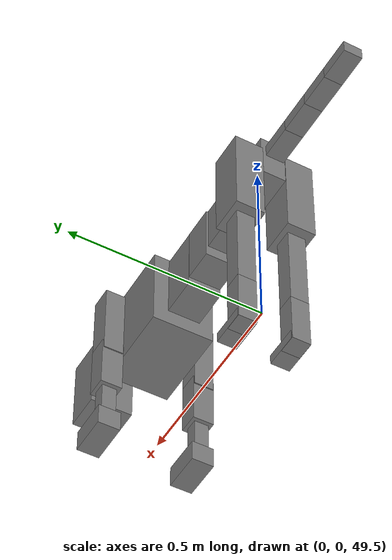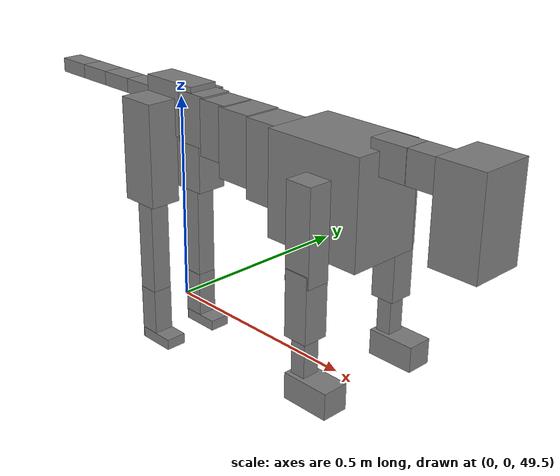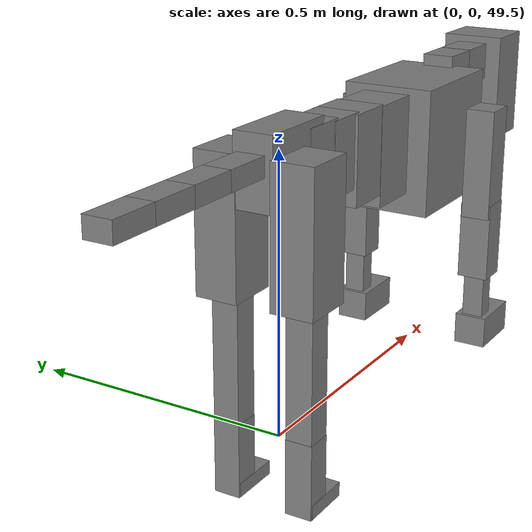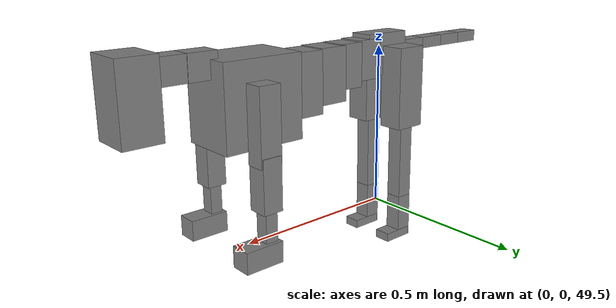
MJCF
<mujoco model="dog">

    <default>
        <joint armature="0.02" stiffness="1" damping="0.2" limited="true"/>
        <geom condim="3" friction="1 0.05 0.05" margin="0.01"/>
        <motor ctrllimited="true" ctrlrange="-1.0 1.0" forcelimited="true" gear="50"/>
    </default>

    <compiler inertiafromgeom="true" angle="radian"/>

    <option timestep="0.016" iterations="50" tolerance="1e-10" solver="Newton" jacobian="dense" cone="pyramidal"/>

    <size nconmax="20000" njmax="60000" nstack="5000000"/>
    <visual>
        <map force="0.1" zfar="30"/>
        <rgba haze="0.15 0.25 0.35 1"/>
        <quality shadowsize="2048"/>
        <global offwidth="800" offheight="800"/>
    </visual>

    <asset>
        <texture type="skybox" builtin="gradient" rgb1="0.3 0.5 0.7" rgb2="0 0 0" width="512" height="512"/>
        <texture name="texplane" type="2d" builtin="checker" rgb1=".2 .3 .4" rgb2=".1 0.15 0.2" width="512" height="512"
                 mark="cross" markrgb=".8 .8 .8"/>
        <texture name="texgeom" type="cube" builtin="flat" mark="cross" width="127" height="1278" rgb1="0.8 0.6 0.4"
                 rgb2="0.8 0.6 0.4" markrgb="1 1 1" random="0.01"/>

        <material name="matplane" reflectance="0.3" texture="texplane" texrepeat="1 1" texuniform="true"/>
        <material name="matgeom" texture="texgeom" texuniform="true" rgba="0.8 0.6 .4 1"/>
    </asset>

    <worldbody>
        <geom name="floor" pos="0 0 0" size="0 0 .25" type="plane" material="matplane" condim="3"/>

        <light directional="false" diffuse=".2 .2 .2" specular="0 0 0" pos="0 0 5" dir="0 0 -1" castshadow="false"/>
        <light mode="targetbodycom" target="torso" directional="false" diffuse=".8 .8 .8" specular="0.3 0.3 0.3"
               pos="0 0 4.0" dir="0 0 -1"/>

        <body name="root" pos="0 0 50">
            <freejoint name="root_1"/>
            <geom type="box" pos="0 0 -0.02" size="0.0774  0.0358  0.063" density="2030"/>

            <body name="spine1" pos="0.054 0 0">
                <joint name="spine1_y" axis="0 1 0" range="0 0.7" limited="true"/>
                <geom type="box" pos="0.02375 0 -0.03" size="0.04375  0.0375  0.05985" density="2030"/>

                <body name="spine2" pos="0.0612 0 0">
                    <joint name="spine2_y" axis="0 1 0" range="-0.15 0.15" limited="true"/>
                    <geom type="box" pos="0.03555  0  -0.04" size="0.04055  0.039  0.06615" density="2030"/>

                    <body name="spine3" pos="0.0730 0 0">
                        <joint name="spine3_y" axis="0 1 0" range="-0.15 0.15" limited="true"/>
                        <geom type="box" pos="0.03555  0  -0.057" size="0.04555  0.0445  0.081" density="2030"/>

                        <body name="spine4" pos="0.0780 0 0">
                            <joint name="spine4_y" axis="0 1 0" range="-0.15 0.15" limited="true"/>
                            <geom type="box" pos="0.05265  0  -0.07" size="0.05265  0.045  0.09135" density="2030"/>

                            <body name="torso" pos="0.1082 0 0">
                                <joint name="torso_y" axis="0 1 0" range="-0.15 0.15" limited="true"/>
                                <geom type="box" pos="0.11925  0  -0.085" size="0.11925  0.085  0.11745"
                                      density="2030"/>

                                <body name="neck1" pos="0.2160  0   0.0180">
                                    <joint name="neck1_y" axis="0 1 0" range="-1.2  -1" limited="true"/>
                                    <geom type="box" pos="0.0423  0  0" size="0.0423  0.03  0.036" density="2325"/>

                                    <body name="neck2" pos="0.0853  0  0">
                                        <joint name="neck2_y" axis="0 1 0" range="0.1  0" limited="true"/>
                                        <geom type="box" pos="0.0423  0  0" size="0.0423  0.03  0.036" density="2325"/>

                                        <body name="head" pos="0.0853  0  0">
                                            <joint name="head_y" axis="0 1 0" range="-0.3  -0.2" limited="true"/>
                                            <geom type="box" pos="0.0531  0  -0.055" size="0.0531  0.06  0.1044"
                                                  density="4030"/>

                                        </body>
                                    </body>
                                </body>

                                <body name="front_shoulder" pos="0.156  0   -0.0480">
                                    <joint name="front_shoulder_y" axis="0 1 0" range="-1 1.5" limited="true"/>
                                    <geom type="box" pos="0 0.13 -0.0778" size="0.0315  0.0270  0.1044" density="1158"/>
                                    <geom type="box" pos="0 -0.13 -0.0778" size="0.0315  0.0270  0.1044"
                                          density="1158"/>

                                    <body name="front_elbow" pos="0  0  -0.1556">
                                        <joint name="front_elbow_y" axis="0 1 0" range="-2 0" limited="true"/>
                                        <geom type="box" pos="0 0.13 -0.0736" size="0.0286  0.0292  0.0736"
                                              density="1081"/>
                                        <geom type="box" pos="0 -0.13 -0.0736" size="0.0286  0.0292  0.0736"
                                              density="1081"/>

                                        <body name="front_wrist" pos="0  0  -0.1472">
                                            <joint name="front_wrist_y" axis="0 1 0" range="-0.2 0" limited="true"/>
                                            <geom type="box" pos="0 0.13 -0.0485" size="0.0178  0.0198  0.0617"
                                                  density="1664"/>
                                            <geom type="box" pos="0 -0.13 -0.0485" size="0.0178  0.0198  0.0617"
                                                  density="1664"/>

                                            <body name="front_finger_end" pos="0  0  -0.0970">
                                                <joint name="front_finger_y" axis="0 1 0" range="-0.4 1"
                                                       limited="true"/>
                                                <geom type="box" pos="0.0304  0.13  -0.0145"
                                                      size="0.0558  0.0304  0.0295" density="1515"/>
                                                <geom type="box" pos="0.0304  -0.13  -0.0145"
                                                      size="0.0558  0.0304  0.0295" density="1515"/>

                                            </body>

                                        </body>
                                    </body>
                                </body>

                            </body>
                        </body>
                    </body>
                </body>
            </body>

            <body name="back_hip" pos="-0.03 0 -0.018">
                <joint name="back_hip_y" axis="0 1 0" range="-1.5 0.3" limited="true"/>
                <geom type="box" pos="0 0.07 -0.1007" size="0.0491  0.0385  0.1235" density="1154"/>
                <geom type="box" pos="0 -0.07 -0.1007" size="0.0491  0.0385  0.1235" density="1154"/>

                <body name="back_knee" pos="0  0  -0.2014">
                    <joint name="back_knee_y" axis="0 1 0" range="0 2.8" limited="true"/>
                    <geom type="box" pos="0 0.07 -0.1305" size="0.0245  0.0242  0.1460" density="1227"/>
                    <geom type="box" pos="0 -0.07 -0.1305" size="0.0245  0.0242  0.1460" density="1227"/>

                    <body name="back_ankle" pos="0  0  -0.2610">
                        <joint name="back_ankle_y" axis="0 1 0" range="-2.2 0" limited="true"/>
                        <geom type="box" pos="0 0.07 -0.0574" size="0.0246  0.0246  0.0686" density="1284"/>
                        <geom type="box" pos="0 -0.07 -0.0574" size="0.0246  0.0246  0.0686" density="1284"/>

                        <body name="back_toe_end" pos="0  0  -0.1148">
                            <joint name="back_toe_y" axis="0 1 0" range="-0.4 1" limited="true"/>
                            <geom type="box" pos="0.0253  0.07  0.0020" size="0.0463  0.0253  0.0130" density="1515"/>
                            <geom type="box" pos="0.0253  -0.07  0.0020" size="0.0463  0.0253  0.0130" density="1515"/>

                        </body>
                    </body>
                </body>
            </body>

            <body name="tail1" pos="-0.074 0 -0.006">
                <joint name="tail1_y" axis="0 1 0" range="-0.2 0.2" limited="true"/>
                <geom type="box" pos="-0.0536  0  0" size="0.045  0.025  0.0175" density="1587"/>

                <body name="tail2" pos="-0.09 0 0">
                    <joint name="tail2_y" axis="0 1 0" range="-0.2 0.2" limited="true"/>
                    <geom type="box" pos="-0.0536  0  0" size="0.045  0.025  0.0175" density="1587"/>

                    <body name="tail3" pos="-0.09 0 0">
                        <joint name="tail3_y" axis="0 1 0" range="-0.2 0.2" limited="true"/>
                        <geom type="box" pos="-0.0536  0  0" size="0.045  0.025  0.0175" density="1587"/>

                        <body name="tail4" pos="-0.09 0 0">
                            <joint name="tail4_y" axis="0 1 0" range="-0.2 0.2" limited="true"/>
                            <geom type="box" pos="-0.0536  0  0" size="0.045  0.025  0.0175" density="1587"/>

                        </body>
                    </body>
                </body>
            </body>
        </body>
    </worldbody>

    <actuator>
        <motor joint="spine1_y" forcerange="-150 150     "/>
        <motor joint="spine2_y" forcerange="-150 150     "/>
        <motor joint="spine3_y" forcerange="-150 150     "/>
        <motor joint="spine4_y" forcerange="-150 150     "/>
        <motor joint="torso_y" forcerange="-150 150     "/>
        <motor joint="neck1_y" forcerange="-100 100       "/>
        <motor joint="neck2_y" forcerange="-100 100       "/>
        <motor joint="head_y" forcerange="-150 150       "/>
        <motor joint="front_shoulder_y" forcerange="-116.02 163.73"/>
        <motor joint="front_elbow_y" forcerange="-196.38 116.35"/>
        <motor joint="front_wrist_y" forcerange="-60.98 97.05"/>
        <motor joint="front_finger_y" forcerange="-51.18 71.15"/>
        <motor joint="back_hip_y" forcerange="-333.04 380.22"/>
        <motor joint="back_knee_y" forcerange="-333.25 218.59"/>
        <motor joint="back_angle_y" forcerange="-183.45 110.53"/>
        <motor joint="back_toe_y" forcerange="-82.42 39.78"/>
        <motor joint="tail1_y" forcerange="-50 50     "/>
        <motor joint="tail2_y" forcerange="-50 50     "/>
        <motor joint="tail3_y" forcerange="-50 50     "/>
        <motor joint="tail4_y" forcerange="-50 50     "/>
    </actuator>
</mujoco>
